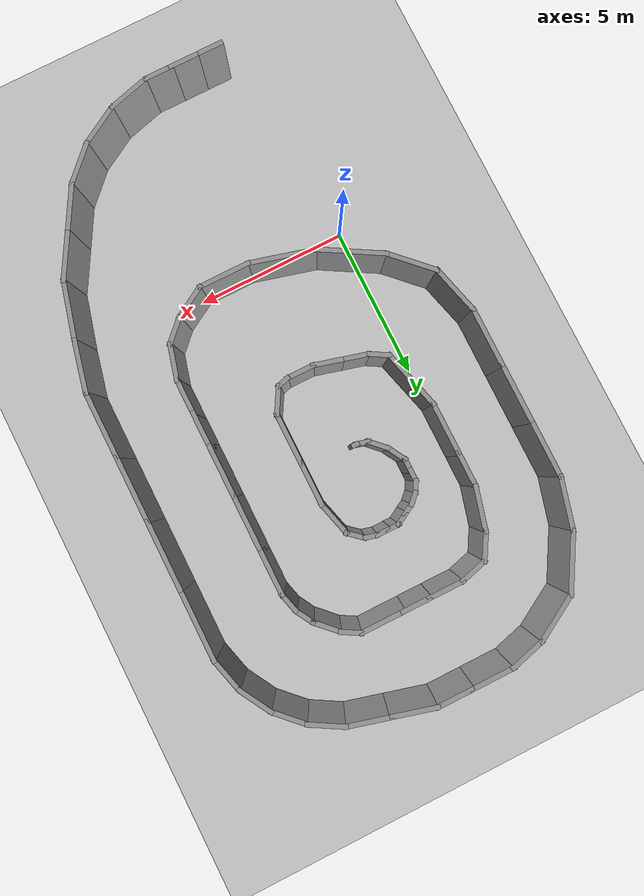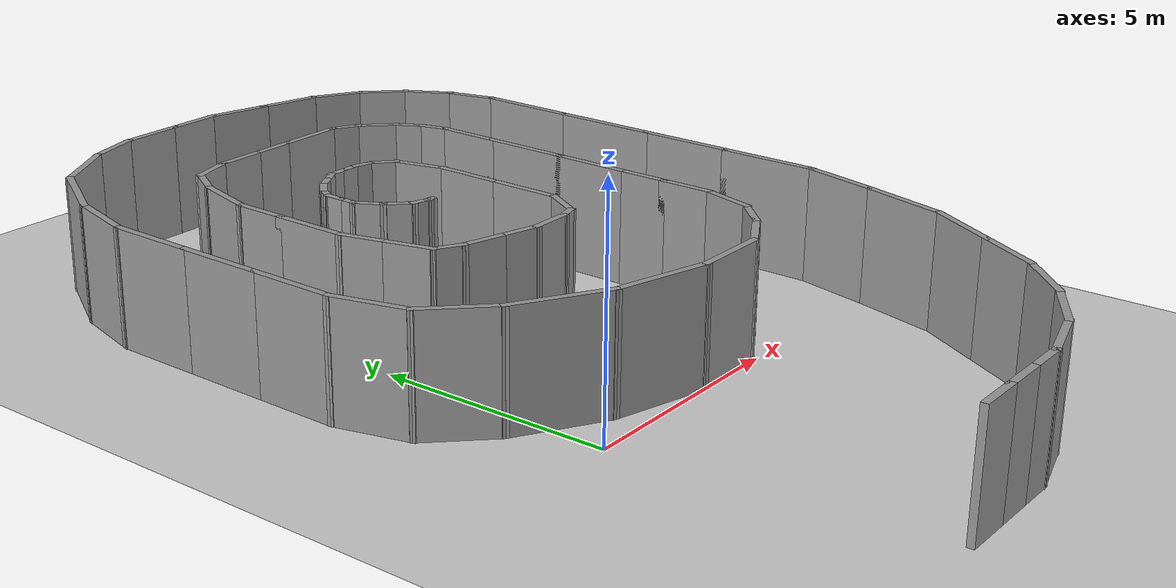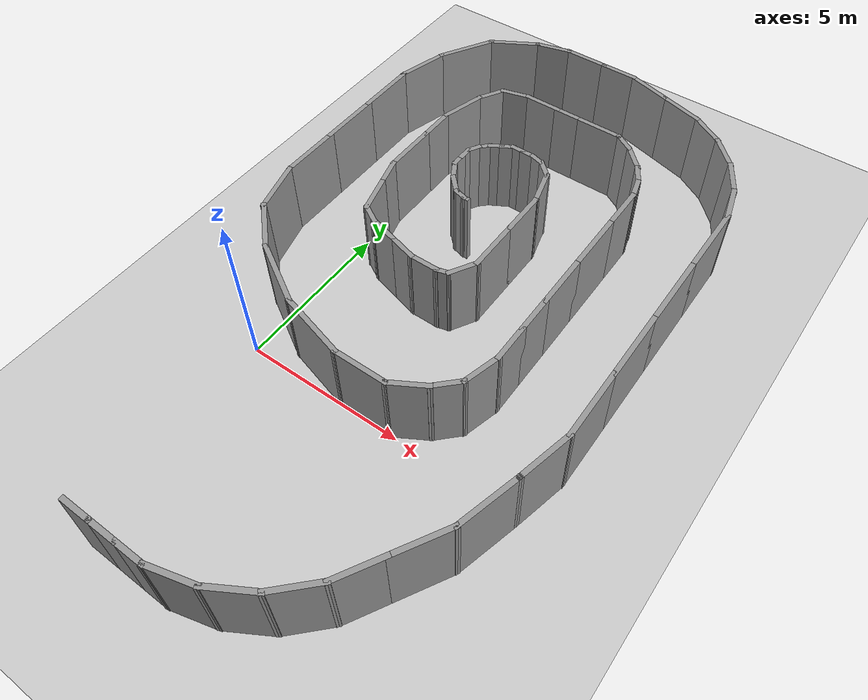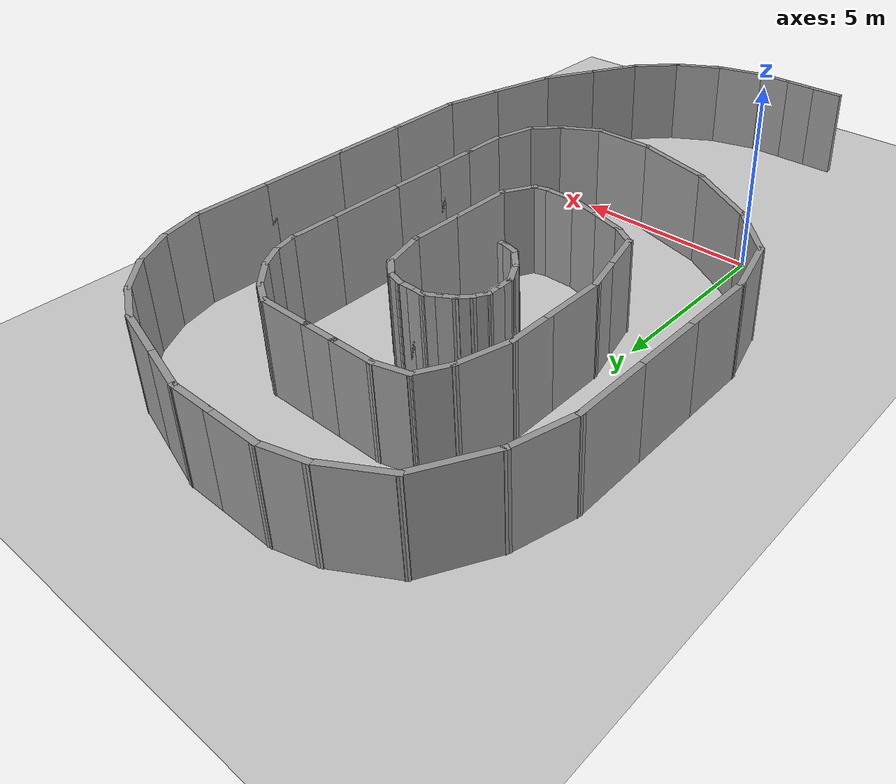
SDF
<sdf version="1.6">
 <world name="default">
  <light name="sun" type="directional">
   <pose>0 0 10 0 -0 0</pose>
   <diffuse>0.8 0.8 0.8 1</diffuse>
   <specular>0.2 0.2 0.2 1</specular>
   <attenuation>
    <range>1000</range>
    <constant>0.9</constant>
    <linear>0.01</linear>
    <quadratic>0.001</quadratic>
   </attenuation>
   <direction>-0.5 0.1 -0.9</direction>
  </light>
  <model name="ground_plane">
   <static>1</static>
   <link name="link">
    <collision name="collision">
     <geometry><plane><normal>0 0 1</normal><size>100 100</size></plane></geometry>
     <surface><friction><ode><mu>100</mu><mu2>50</mu2></ode></friction></surface>
    </collision>
    <visual name="visual">
     <cast_shadows>0</cast_shadows>
     <geometry><plane><normal>0 0 1</normal><size>100 100</size></plane></geometry>
     <material>
      <script><uri>file://media/materials/scripts/gazebo.material</uri><name>Gazebo/Grey</name></script>
     </material>
    </visual>
   </link>
  </model>
  <gravity>0 0 -9.8</gravity>
  <magnetic_field>6e-06 2.3e-05 -4.2e-05</magnetic_field>
  <atmosphere type="adiabatic"/>
  <physics name="default_physics" default="0" type="ode">
   <max_step_size>0.001</max_step_size>
   <real_time_factor>1</real_time_factor>
   <real_time_update_rate>1000</real_time_update_rate>
  </physics>
  <scene><ambient>0.4 0.4 0.4 1</ambient><background>0.7 0.7 0.7 1</background><shadows>1</shadows></scene>
  <audio><device>default</device></audio>
  <spherical_coordinates>
   <surface_model>EARTH_WGS84</surface_model>
   <latitude_deg>0</latitude_deg>
   <longitude_deg>0</longitude_deg>
   <elevation>0</elevation>
   <heading_deg>0</heading_deg>
  </spherical_coordinates>
  <model name="Snail">
   <pose>3.48593 3.80381 0 0 -0 1.56839</pose>
   <link name="Wall_10">
    <collision name="Wall_10_Collision">
     <geometry><box><size>1.5 0.15 2.5</size></box></geometry>
     <pose>0 0 1.25 0 -0 0</pose>
    </collision>
    <visual name="Wall_10_Visual">
     <pose>0 0 1.25 0 -0 0</pose>
     <geometry><box><size>1.5 0.15 2.5</size></box></geometry>
     <material>
      <script><uri>file://media/materials/scripts/gazebo.material</uri><name>Gazebo/Grey</name></script>
      <ambient>1 1 1 1</ambient>
     </material>
     <meta><layer>0</layer></meta>
    </visual>
    <pose>-9.6122 -1.83835 0 0 -0 -1.0472</pose>
   </link>
   <link name="Wall_11">
    <collision name="Wall_11_Collision">
     <geometry><box><size>1.5 0.15 2.5</size></box></geometry>
     <pose>0 0 1.25 0 -0 0</pose>
    </collision>
    <visual name="Wall_11_Visual">
     <pose>0 0 1.25 0 -0 0</pose>
     <geometry><box><size>1.5 0.15 2.5</size></box></geometry>
     <material>
      <script><uri>file://media/materials/scripts/gazebo.material</uri><name>Gazebo/Grey</name></script>
      <ambient>1 1 1 1</ambient>
     </material>
     <meta><layer>0</layer></meta>
    </visual>
    <pose>-8.79741 -2.90021 0 0 -0 -0.785398</pose>
   </link>
   <link name="Wall_12">
    <collision name="Wall_12_Collision">
     <geometry><box><size>1.5 0.15 2.5</size></box></geometry>
     <pose>0 0 1.25 0 -0 0</pose>
    </collision>
    <visual name="Wall_12_Visual">
     <pose>0 0 1.25 0 -0 0</pose>
     <geometry><box><size>1.5 0.15 2.5</size></box></geometry>
     <material>
      <script><uri>file://media/materials/scripts/gazebo.material</uri><name>Gazebo/Grey</name></script>
      <ambient>1 1 1 1</ambient>
     </material>
     <meta><layer>0</layer></meta>
    </visual>
    <pose>-7.73554 -3.71501 0 0 -0 -0.523599</pose>
   </link>
   <link name="Wall_13">
    <collision name="Wall_13_Collision">
     <geometry><box><size>1.75 0.15 2.5</size></box></geometry>
     <pose>0 0 1.25 0 -0 0</pose>
    </collision>
    <visual name="Wall_13_Visual">
     <pose>0 0 1.25 0 -0 0</pose>
     <geometry><box><size>1.75 0.15 2.5</size></box></geometry>
     <material>
      <script><uri>file://media/materials/scripts/gazebo.material</uri><name>Gazebo/Grey</name></script>
      <ambient>1 1 1 1</ambient>
     </material>
     <meta><layer>0</layer></meta>
    </visual>
    <pose>-6.45816 -4.45251 0 0 -0 -0.523599</pose>
   </link>
   <link name="Wall_14">
    <collision name="Wall_14_Collision">
     <geometry><box><size>2 0.15 2.5</size></box></geometry>
     <pose>0 0 1.25 0 -0 0</pose>
    </collision>
    <visual name="Wall_14_Visual">
     <pose>0 0 1.25 0 -0 0</pose>
     <geometry><box><size>2 0.15 2.5</size></box></geometry>
     <material>
      <script><uri>file://media/materials/scripts/gazebo.material</uri><name>Gazebo/Grey</name></script>
      <ambient>1 1 1 1</ambient>
     </material>
     <meta><layer>0</layer></meta>
    </visual>
    <pose>-4.87185 -5.09192 0 0 -0 -0.261799</pose>
   </link>
   <link name="Wall_15">
    <collision name="Wall_15_Collision">
     <geometry><box><size>1.77919 0.15 2.5</size></box></geometry>
     <pose>0 0 1.25 0 -0 0</pose>
    </collision>
    <visual name="Wall_15_Visual">
     <pose>0 0 1.25 0 -0 0</pose>
     <geometry><box><size>1.77919 0.15 2.5</size></box></geometry>
     <material>
      <script><uri>file://media/materials/scripts/gazebo.material</uri><name>Gazebo/Grey</name></script>
      <ambient>1 1 1 1</ambient>
     </material>
     <meta><layer>0</layer></meta>
    </visual>
    <pose>-3.18552 -5.51827 0 0 -0 -0.231554</pose>
   </link>
   <link name="Wall_18">
    <collision name="Wall_18_Collision">
     <geometry><box><size>2.25 0.15 2.5</size></box></geometry>
     <pose>0 0 1.25 0 -0 0</pose>
    </collision>
    <visual name="Wall_18_Visual">
     <pose>0 0 1.25 0 -0 0</pose>
     <geometry><box><size>2.25 0.15 2.5</size></box></geometry>
     <material>
      <script><uri>file://media/materials/scripts/gazebo.material</uri><name>Gazebo/Grey</name></script>
      <ambient>1 1 1 1</ambient>
     </material>
     <meta><layer>0</layer></meta>
    </visual>
    <pose>-1.34266 -5.70521 0 0 -0 0</pose>
   </link>
   <link name="Wall_19">
    <collision name="Wall_19_Collision">
     <geometry><box><size>2.25 0.15 2.5</size></box></geometry>
     <pose>0 0 1.25 0 -0 0</pose>
    </collision>
    <visual name="Wall_19_Visual">
     <pose>0 0 1.25 0 -0 0</pose>
     <geometry><box><size>2.25 0.15 2.5</size></box></geometry>
     <material>
      <script><uri>file://media/materials/scripts/gazebo.material</uri><name>Gazebo/Grey</name></script>
      <ambient>1 1 1 1</ambient>
     </material>
     <meta><layer>0</layer></meta>
    </visual>
    <pose>0.757335 -5.70521 0 0 -0 0</pose>
   </link>
   <link name="Wall_20">
    <collision name="Wall_20_Collision">
     <geometry><box><size>2.5 0.15 2.5</size></box></geometry>
     <pose>0 0 1.25 0 -0 0</pose>
    </collision>
    <visual name="Wall_20_Visual">
     <pose>0 0 1.25 0 -0 0</pose>
     <geometry><box><size>2.5 0.15 2.5</size></box></geometry>
     <material>
      <script><uri>file://media/materials/scripts/gazebo.material</uri><name>Gazebo/Grey</name></script>
      <ambient>1 1 1 1</ambient>
     </material>
     <meta><layer>0</layer></meta>
    </visual>
    <pose>2.98234 -5.70521 0 0 -0 0</pose>
   </link>
   <link name="Wall_21">
    <collision name="Wall_21_Collision">
     <geometry><box><size>2.25 0.15 2.5</size></box></geometry>
     <pose>0 0 1.25 0 -0 0</pose>
    </collision>
    <visual name="Wall_21_Visual">
     <pose>0 0 1.25 0 -0 0</pose>
     <geometry><box><size>2.25 0.15 2.5</size></box></geometry>
     <material>
      <script><uri>file://media/materials/scripts/gazebo.material</uri><name>Gazebo/Grey</name></script>
      <ambient>1 1 1 1</ambient>
     </material>
     <meta><layer>0</layer></meta>
    </visual>
    <pose>5.20733 -5.70521 0 0 -0 0</pose>
   </link>
   <link name="Wall_22">
    <collision name="Wall_22_Collision">
     <geometry><box><size>1.25 0.15 2.5</size></box></geometry>
     <pose>0 0 1.25 0 -0 0</pose>
    </collision>
    <visual name="Wall_22_Visual">
     <pose>0 0 1.25 0 -0 0</pose>
     <geometry><box><size>1.25 0.15 2.5</size></box></geometry>
     <material>
      <script><uri>file://media/materials/scripts/gazebo.material</uri><name>Gazebo/Grey</name></script>
      <ambient>1 1 1 1</ambient>
     </material>
     <meta><layer>0</layer></meta>
    </visual>
    <pose>6.78859 -5.56286 0 0 -0 0.261799</pose>
   </link>
   <link name="Wall_23">
    <collision name="Wall_23_Collision">
     <geometry><box><size>1.25 0.15 2.5</size></box></geometry>
     <pose>0 0 1.25 0 -0 0</pose>
    </collision>
    <visual name="Wall_23_Visual">
     <pose>0 0 1.25 0 -0 0</pose>
     <geometry><box><size>1.25 0.15 2.5</size></box></geometry>
     <material>
      <script><uri>file://media/materials/scripts/gazebo.material</uri><name>Gazebo/Grey</name></script>
      <ambient>1 1 1 1</ambient>
     </material>
     <meta><layer>0</layer></meta>
    </visual>
    <pose>7.79617 -5.14551 0 0 -0 0.523599</pose>
   </link>
   <link name="Wall_24">
    <collision name="Wall_24_Collision">
     <geometry><box><size>1.25 0.15 2.5</size></box></geometry>
     <pose>0 0 1.25 0 -0 0</pose>
    </collision>
    <visual name="Wall_24_Visual">
     <pose>0 0 1.25 0 -0 0</pose>
     <geometry><box><size>1.25 0.15 2.5</size></box></geometry>
     <material>
      <script><uri>file://media/materials/scripts/gazebo.material</uri><name>Gazebo/Grey</name></script>
      <ambient>1 1 1 1</ambient>
     </material>
     <meta><layer>0</layer></meta>
    </visual>
    <pose>8.66139 -4.4816 0 0 -0 0.785398</pose>
   </link>
   <link name="Wall_25">
    <collision name="Wall_25_Collision">
     <geometry><box><size>1.25 0.15 2.5</size></box></geometry>
     <pose>0 0 1.25 0 -0 0</pose>
    </collision>
    <visual name="Wall_25_Visual">
     <pose>0 0 1.25 0 -0 0</pose>
     <geometry><box><size>1.25 0.15 2.5</size></box></geometry>
     <material>
      <script><uri>file://media/materials/scripts/gazebo.material</uri><name>Gazebo/Grey</name></script>
      <ambient>1 1 1 1</ambient>
     </material>
     <meta><layer>0</layer></meta>
    </visual>
    <pose>9.3253 -3.61638 0 0 -0 1.0472</pose>
   </link>
   <link name="Wall_26">
    <collision name="Wall_26_Collision">
     <geometry><box><size>1.5 0.15 2.5</size></box></geometry>
     <pose>0 0 1.25 0 -0 0</pose>
    </collision>
    <visual name="Wall_26_Visual">
     <pose>0 0 1.25 0 -0 0</pose>
     <geometry><box><size>1.5 0.15 2.5</size></box></geometry>
     <material>
      <script><uri>file://media/materials/scripts/gazebo.material</uri><name>Gazebo/Grey</name></script>
      <ambient>1 1 1 1</ambient>
     </material>
     <meta><layer>0</layer></meta>
    </visual>
    <pose>9.775 -2.48806 0 0 -0 1.309</pose>
   </link>
   <link name="Wall_27">
    <collision name="Wall_27_Collision">
     <geometry><box><size>1.5 0.15 2.5</size></box></geometry>
     <pose>0 0 1.25 0 -0 0</pose>
    </collision>
    <visual name="Wall_27_Visual">
     <pose>0 0 1.25 0 -0 0</pose>
     <geometry><box><size>1.5 0.15 2.5</size></box></geometry>
     <material>
      <script><uri>file://media/materials/scripts/gazebo.material</uri><name>Gazebo/Grey</name></script>
      <ambient>1 1 1 1</ambient>
     </material>
     <meta><layer>0</layer></meta>
    </visual>
    <pose>10.1244 -1.18406 0 0 -0 1.309</pose>
   </link>
   <link name="Wall_28">
    <collision name="Wall_28_Collision">
     <geometry><box><size>1.25 0.15 2.5</size></box></geometry>
     <pose>0 0 1.25 0 -0 0</pose>
    </collision>
    <visual name="Wall_28_Visual">
     <pose>0 0 1.25 0 -0 0</pose>
     <geometry><box><size>1.25 0.15 2.5</size></box></geometry>
     <material>
      <script><uri>file://media/materials/scripts/gazebo.material</uri><name>Gazebo/Grey</name></script>
      <ambient>1 1 1 1</ambient>
     </material>
     <meta><layer>0</layer></meta>
    </visual>
    <pose>10.2991 0.017938 0 0 -0 1.5708</pose>
   </link>
   <link name="Wall_29">
    <collision name="Wall_29_Collision">
     <geometry><box><size>1.5 0.15 2.5</size></box></geometry>
     <pose>0 0 1.25 0 -0 0</pose>
    </collision>
    <visual name="Wall_29_Visual">
     <pose>0 0 1.25 0 -0 0</pose>
     <geometry><box><size>1.5 0.15 2.5</size></box></geometry>
     <material>
      <script><uri>file://media/materials/scripts/gazebo.material</uri><name>Gazebo/Grey</name></script>
      <ambient>1 1 1 1</ambient>
     </material>
     <meta><layer>0</layer></meta>
    </visual>
    <pose>10.2991 1.24294 0 0 -0 1.5708</pose>
   </link>
   <link name="Wall_30">
    <collision name="Wall_30_Collision">
     <geometry><box><size>1.25 0.15 2.5</size></box></geometry>
     <pose>0 0 1.25 0 -0 0</pose>
    </collision>
    <visual name="Wall_30_Visual">
     <pose>0 0 1.25 0 -0 0</pose>
     <geometry><box><size>1.25 0.15 2.5</size></box></geometry>
     <material>
      <script><uri>file://media/materials/scripts/gazebo.material</uri><name>Gazebo/Grey</name></script>
      <ambient>1 1 1 1</ambient>
     </material>
     <meta><layer>0</layer></meta>
    </visual>
    <pose>10.1568 2.4492 0 0 -0 1.8326</pose>
   </link>
   <link name="Wall_31">
    <collision name="Wall_31_Collision">
     <geometry><box><size>1.75 0.15 2.5</size></box></geometry>
     <pose>0 0 1.25 0 -0 0</pose>
    </collision>
    <visual name="Wall_31_Visual">
     <pose>0 0 1.25 0 -0 0</pose>
     <geometry><box><size>1.75 0.15 2.5</size></box></geometry>
     <material>
      <script><uri>file://media/materials/scripts/gazebo.material</uri><name>Gazebo/Grey</name></script>
      <ambient>1 1 1 1</ambient>
     </material>
     <meta><layer>0</layer></meta>
    </visual>
    <pose>9.61441 3.67328 0 0 -0 2.0944</pose>
   </link>
   <link name="Wall_32">
    <collision name="Wall_32_Collision">
     <geometry><box><size>2 0.15 2.5</size></box></geometry>
     <pose>0 0 1.25 0 -0 0</pose>
    </collision>
    <visual name="Wall_32_Visual">
     <pose>0 0 1.25 0 -0 0</pose>
     <geometry><box><size>2 0.15 2.5</size></box></geometry>
     <material>
      <script><uri>file://media/materials/scripts/gazebo.material</uri><name>Gazebo/Grey</name></script>
      <ambient>1 1 1 1</ambient>
     </material>
     <meta><layer>0</layer></meta>
    </visual>
    <pose>8.41334 4.8286 0 0 -0 2.61799</pose>
   </link>
   <link name="Wall_33">
    <collision name="Wall_33_Collision">
     <geometry><box><size>1.75 0.15 2.5</size></box></geometry>
     <pose>0 0 1.25 0 -0 0</pose>
    </collision>
    <visual name="Wall_33_Visual">
     <pose>0 0 1.25 0 -0 0</pose>
     <geometry><box><size>1.75 0.15 2.5</size></box></geometry>
     <material>
      <script><uri>file://media/materials/scripts/gazebo.material</uri><name>Gazebo/Grey</name></script>
      <ambient>1 1 1 1</ambient>
     </material>
     <meta><layer>0</layer></meta>
    </visual>
    <pose>6.83952 5.49815 0 0 -0 2.87979</pose>
   </link>
   <link name="Wall_34">
    <collision name="Wall_34_Collision">
     <geometry><box><size>2 0.15 2.5</size></box></geometry>
     <pose>0 0 1.25 0 -0 0</pose>
    </collision>
    <visual name="Wall_34_Visual">
     <pose>0 0 1.25 0 -0 0</pose>
     <geometry><box><size>2 0.15 2.5</size></box></geometry>
     <material>
      <script><uri>file://media/materials/scripts/gazebo.material</uri><name>Gazebo/Grey</name></script>
      <ambient>1 1 1 1</ambient>
     </material>
     <meta><layer>0</layer></meta>
    </visual>
    <pose>5.14178 5.70521 0 0 -0 3.14159</pose>
   </link>
   <link name="Wall_35">
    <collision name="Wall_35_Collision">
     <geometry><box><size>2 0.15 2.5</size></box></geometry>
     <pose>0 0 1.25 0 -0 0</pose>
    </collision>
    <visual name="Wall_35_Visual">
     <pose>0 0 1.25 0 -0 0</pose>
     <geometry><box><size>2 0.15 2.5</size></box></geometry>
     <material>
      <script><uri>file://media/materials/scripts/gazebo.material</uri><name>Gazebo/Grey</name></script>
      <ambient>1 1 1 1</ambient>
     </material>
     <meta><layer>0</layer></meta>
    </visual>
    <pose>3.29178 5.70521 0 0 -0 3.14159</pose>
   </link>
   <link name="Wall_36">
    <collision name="Wall_36_Collision">
     <geometry><box><size>2 0.15 2.5</size></box></geometry>
     <pose>0 0 1.25 0 -0 0</pose>
    </collision>
    <visual name="Wall_36_Visual">
     <pose>0 0 1.25 0 -0 0</pose>
     <geometry><box><size>2 0.15 2.5</size></box></geometry>
     <material>
      <script><uri>file://media/materials/scripts/gazebo.material</uri><name>Gazebo/Grey</name></script>
      <ambient>1 1 1 1</ambient>
     </material>
     <meta><layer>0</layer></meta>
    </visual>
    <pose>1.44178 5.70521 0 0 -0 3.14159</pose>
   </link>
   <link name="Wall_37">
    <collision name="Wall_37_Collision">
     <geometry><box><size>1.75 0.15 2.5</size></box></geometry>
     <pose>0 0 1.25 0 -0 0</pose>
    </collision>
    <visual name="Wall_37_Visual">
     <pose>0 0 1.25 0 -0 0</pose>
     <geometry><box><size>1.75 0.15 2.5</size></box></geometry>
     <material>
      <script><uri>file://media/materials/scripts/gazebo.material</uri><name>Gazebo/Grey</name></script>
      <ambient>1 1 1 1</ambient>
     </material>
     <meta><layer>0</layer></meta>
    </visual>
    <pose>-0.255959 5.49815 0 0 -0 -2.87979</pose>
   </link>
   <link name="Wall_38">
    <collision name="Wall_38_Collision">
     <geometry><box><size>1.75 0.15 2.5</size></box></geometry>
     <pose>0 0 1.25 0 -0 0</pose>
    </collision>
    <visual name="Wall_38_Visual">
     <pose>0 0 1.25 0 -0 0</pose>
     <geometry><box><size>1.75 0.15 2.5</size></box></geometry>
     <material>
      <script><uri>file://media/materials/scripts/gazebo.material</uri><name>Gazebo/Grey</name></script>
      <ambient>1 1 1 1</ambient>
     </material>
     <meta><layer>0</layer></meta>
    </visual>
    <pose>-1.59438 4.72541 0 0 -0 -2.35619</pose>
   </link>
   <link name="Wall_39">
    <collision name="Wall_39_Collision">
     <geometry><box><size>2.25 0.15 2.5</size></box></geometry>
     <pose>0 0 1.25 0 -0 0</pose>
    </collision>
    <visual name="Wall_39_Visual">
     <pose>0 0 1.25 0 -0 0</pose>
     <geometry><box><size>2.25 0.15 2.5</size></box></geometry>
     <material>
      <script><uri>file://media/materials/scripts/gazebo.material</uri><name>Gazebo/Grey</name></script>
      <ambient>1 1 1 1</ambient>
     </material>
     <meta><layer>0</layer></meta>
    </visual>
    <pose>-2.68507 3.2504 0 0 -0 -2.0944</pose>
   </link>
   <link name="Wall_40">
    <collision name="Wall_40_Collision">
     <geometry><box><size>2.25 0.15 2.5</size></box></geometry>
     <pose>0 0 1.25 0 -0 0</pose>
    </collision>
    <visual name="Wall_40_Visual">
     <pose>0 0 1.25 0 -0 0</pose>
     <geometry><box><size>2.25 0.15 2.5</size></box></geometry>
     <material>
      <script><uri>file://media/materials/scripts/gazebo.material</uri><name>Gazebo/Grey</name></script>
      <ambient>1 1 1 1</ambient>
     </material>
     <meta><layer>0</layer></meta>
    </visual>
    <pose>-3.48183 1.32685 0 0 -0 -1.8326</pose>
   </link>
   <link name="Wall_41">
    <collision name="Wall_41_Collision">
     <geometry><box><size>1.75 0.15 2.5</size></box></geometry>
     <pose>0 0 1.25 0 -0 0</pose>
    </collision>
    <visual name="Wall_41_Visual">
     <pose>0 0 1.25 0 -0 0</pose>
     <geometry><box><size>1.75 0.15 2.5</size></box></geometry>
     <material>
      <script><uri>file://media/materials/scripts/gazebo.material</uri><name>Gazebo/Grey</name></script>
      <ambient>1 1 1 1</ambient>
     </material>
     <meta><layer>0</layer></meta>
    </visual>
    <pose>-3.75359 -0.487371 0 0 -0 -1.5708</pose>
   </link>
   <link name="Wall_42">
    <collision name="Wall_42_Collision">
     <geometry><box><size>1.25 0.15 2.5</size></box></geometry>
     <pose>0 0 1.25 0 -0 0</pose>
    </collision>
    <visual name="Wall_42_Visual">
     <pose>0 0 1.25 0 -0 0</pose>
     <geometry><box><size>1.25 0.15 2.5</size></box></geometry>
     <material>
      <script><uri>file://media/materials/scripts/gazebo.material</uri><name>Gazebo/Grey</name></script>
      <ambient>1 1 1 1</ambient>
     </material>
     <meta><layer>0</layer></meta>
    </visual>
    <pose>-3.47859 -1.76368 0 0 -0 -1.0472</pose>
   </link>
   <link name="Wall_43">
    <collision name="Wall_43_Collision">
     <geometry><box><size>1 0.15 2.5</size></box></geometry>
     <pose>0 0 1.25 0 -0 0</pose>
    </collision>
    <visual name="Wall_43_Visual">
     <pose>0 0 1.25 0 -0 0</pose>
     <geometry><box><size>1 0.15 2.5</size></box></geometry>
     <material>
      <script><uri>file://media/materials/scripts/gazebo.material</uri><name>Gazebo/Grey</name></script>
      <ambient>1 1 1 1</ambient>
     </material>
     <meta><layer>0</layer></meta>
    </visual>
    <pose>-2.90307 -2.54052 0 0 -0 -0.785398</pose>
   </link>
   <link name="Wall_44">
    <collision name="Wall_44_Collision">
     <geometry><box><size>1.25 0.15 2.5</size></box></geometry>
     <pose>0 0 1.25 0 -0 0</pose>
    </collision>
    <visual name="Wall_44_Visual">
     <pose>0 0 1.25 0 -0 0</pose>
     <geometry><box><size>1.25 0.15 2.5</size></box></geometry>
     <material>
      <script><uri>file://media/materials/scripts/gazebo.material</uri><name>Gazebo/Grey</name></script>
      <ambient>1 1 1 1</ambient>
     </material>
     <meta><layer>0</layer></meta>
    </visual>
    <pose>-2.07129 -2.98339 0 0 -0 -0.261799</pose>
   </link>
   <link name="Wall_45">
    <collision name="Wall_45_Collision">
     <geometry><box><size>1.25 0.15 2.5</size></box></geometry>
     <pose>0 0 1.25 0 -0 0</pose>
    </collision>
    <visual name="Wall_45_Visual">
     <pose>0 0 1.25 0 -0 0</pose>
     <geometry><box><size>1.25 0.15 2.5</size></box></geometry>
     <material>
      <script><uri>file://media/materials/scripts/gazebo.material</uri><name>Gazebo/Grey</name></script>
      <ambient>1 1 1 1</ambient>
     </material>
     <meta><layer>0</layer></meta>
    </visual>
    <pose>-0.990032 -3.12574 0 0 -0 0</pose>
   </link>
   <link name="Wall_46">
    <collision name="Wall_46_Collision">
     <geometry><box><size>1.25 0.15 2.5</size></box></geometry>
     <pose>0 0 1.25 0 -0 0</pose>
    </collision>
    <visual name="Wall_46_Visual">
     <pose>0 0 1.25 0 -0 0</pose>
     <geometry><box><size>1.25 0.15 2.5</size></box></geometry>
     <material>
      <script><uri>file://media/materials/scripts/gazebo.material</uri><name>Gazebo/Grey</name></script>
      <ambient>1 1 1 1</ambient>
     </material>
     <meta><layer>0</layer></meta>
    </visual>
    <pose>0.109968 -3.12574 0 0 -0 0</pose>
   </link>
   <link name="Wall_47">
    <collision name="Wall_47_Collision">
     <geometry><box><size>1.75 0.15 2.5</size></box></geometry>
     <pose>0 0 1.25 0 -0 0</pose>
    </collision>
    <visual name="Wall_47_Visual">
     <pose>0 0 1.25 0 -0 0</pose>
     <geometry><box><size>1.75 0.15 2.5</size></box></geometry>
     <material>
      <script><uri>file://media/materials/scripts/gazebo.material</uri><name>Gazebo/Grey</name></script>
      <ambient>1 1 1 1</ambient>
     </material>
     <meta><layer>0</layer></meta>
    </visual>
    <pose>1.45997 -3.12574 0 0 -0 0</pose>
   </link>
   <link name="Wall_48">
    <collision name="Wall_48_Collision">
     <geometry><box><size>2 0.15 2.5</size></box></geometry>
     <pose>0 0 1.25 0 -0 0</pose>
    </collision>
    <visual name="Wall_48_Visual">
     <pose>0 0 1.25 0 -0 0</pose>
     <geometry><box><size>2 0.15 2.5</size></box></geometry>
     <material>
      <script><uri>file://media/materials/scripts/gazebo.material</uri><name>Gazebo/Grey</name></script>
      <ambient>1 1 1 1</ambient>
     </material>
     <meta><layer>0</layer></meta>
    </visual>
    <pose>3.18497 -3.12574 0 0 -0 0</pose>
   </link>
   <link name="Wall_49">
    <collision name="Wall_49_Collision">
     <geometry><box><size>1.5 0.15 2.5</size></box></geometry>
     <pose>0 0 1.25 0 -0 0</pose>
    </collision>
    <visual name="Wall_49_Visual">
     <pose>0 0 1.25 0 -0 0</pose>
     <geometry><box><size>1.5 0.15 2.5</size></box></geometry>
     <material>
      <script><uri>file://media/materials/scripts/gazebo.material</uri><name>Gazebo/Grey</name></script>
      <ambient>1 1 1 1</ambient>
     </material>
     <meta><layer>0</layer></meta>
    </visual>
    <pose>4.78497 -3.12574 0 0 -0 0</pose>
   </link>
   <link name="Wall_50">
    <collision name="Wall_50_Collision">
     <geometry><box><size>0.75 0.15 2.5</size></box></geometry>
     <pose>0 0 1.25 0 -0 0</pose>
    </collision>
    <visual name="Wall_50_Visual">
     <pose>0 0 1.25 0 -0 0</pose>
     <geometry><box><size>0.75 0.15 2.5</size></box></geometry>
     <material>
      <script><uri>file://media/materials/scripts/gazebo.material</uri><name>Gazebo/Grey</name></script>
      <ambient>1 1 1 1</ambient>
     </material>
     <meta><layer>0</layer></meta>
    </visual>
    <pose>5.74975 -3.04809 0 0 -0 0.261799</pose>
   </link>
   <link name="Wall_51">
    <collision name="Wall_51_Collision">
     <geometry><box><size>0.75 0.15 2.5</size></box></geometry>
     <pose>0 0 1.25 0 -0 0</pose>
    </collision>
    <visual name="Wall_51_Visual">
     <pose>0 0 1.25 0 -0 0</pose>
     <geometry><box><size>0.75 0.15 2.5</size></box></geometry>
     <material>
      <script><uri>file://media/materials/scripts/gazebo.material</uri><name>Gazebo/Grey</name></script>
      <ambient>1 1 1 1</ambient>
     </material>
     <meta><layer>0</layer></meta>
    </visual>
    <pose>6.29933 -2.82045 0 0 -0 0.523599</pose>
   </link>
   <link name="Wall_52">
    <collision name="Wall_52_Collision">
     <geometry><box><size>1 0.15 2.5</size></box></geometry>
     <pose>0 0 1.25 0 -0 0</pose>
    </collision>
    <visual name="Wall_52_Visual">
     <pose>0 0 1.25 0 -0 0</pose>
     <geometry><box><size>1 0.15 2.5</size></box></geometry>
     <material>
      <script><uri>file://media/materials/scripts/gazebo.material</uri><name>Gazebo/Grey</name></script>
      <ambient>1 1 1 1</ambient>
     </material>
     <meta><layer>0</layer></meta>
    </visual>
    <pose>6.85966 -2.36993 0 0 -0 0.785398</pose>
   </link>
   <link name="Wall_53">
    <collision name="Wall_53_Collision">
     <geometry><box><size>0.75 0.15 2.5</size></box></geometry>
     <pose>0 0 1.25 0 -0 0</pose>
    </collision>
    <visual name="Wall_53_Visual">
     <pose>0 0 1.25 0 -0 0</pose>
     <geometry><box><size>0.75 0.15 2.5</size></box></geometry>
     <material>
      <script><uri>file://media/materials/scripts/gazebo.material</uri><name>Gazebo/Grey</name></script>
      <ambient>1 1 1 1</ambient>
     </material>
     <meta><layer>0</layer></meta>
    </visual>
    <pose>7.31018 -1.8096 0 0 -0 1.0472</pose>
   </link>
   <link name="Wall_54">
    <collision name="Wall_54_Collision">
     <geometry><box><size>1.5 0.15 2.5</size></box></geometry>
     <pose>0 0 1.25 0 -0 0</pose>
    </collision>
    <visual name="Wall_54_Visual">
     <pose>0 0 1.25 0 -0 0</pose>
     <geometry><box><size>1.5 0.15 2.5</size></box></geometry>
     <material>
      <script><uri>file://media/materials/scripts/gazebo.material</uri><name>Gazebo/Grey</name></script>
      <ambient>1 1 1 1</ambient>
     </material>
     <meta><layer>0</layer></meta>
    </visual>
    <pose>7.46018 -0.874793 0 0 -0 1.5708</pose>
   </link>
   <link name="Wall_55">
    <collision name="Wall_55_Collision">
     <geometry><box><size>1 0.15 2.5</size></box></geometry>
     <pose>0 0 1.25 0 -0 0</pose>
    </collision>
    <visual name="Wall_55_Visual">
     <pose>0 0 1.25 0 -0 0</pose>
     <geometry><box><size>1 0.15 2.5</size></box></geometry>
     <material>
      <script><uri>file://media/materials/scripts/gazebo.material</uri><name>Gazebo/Grey</name></script>
      <ambient>1 1 1 1</ambient>
     </material>
     <meta><layer>0</layer></meta>
    </visual>
    <pose>7.46018 0.225207 0 0 -0 1.5708</pose>
   </link>
   <link name="Wall_56">
    <collision name="Wall_56_Collision">
     <geometry><box><size>1.25 0.15 2.5</size></box></geometry>
     <pose>0 0 1.25 0 -0 0</pose>
    </collision>
    <visual name="Wall_56_Visual">
     <pose>0 0 1.25 0 -0 0</pose>
     <geometry><box><size>1.25 0.15 2.5</size></box></geometry>
     <material>
      <script><uri>file://media/materials/scripts/gazebo.material</uri><name>Gazebo/Grey</name></script>
      <ambient>1 1 1 1</ambient>
     </material>
     <meta><layer>0</layer></meta>
    </visual>
    <pose>7.46018 1.20021 0 0 -0 1.5708</pose>
   </link>
   <link name="Wall_57">
    <collision name="Wall_57_Collision">
     <geometry><box><size>1 0.15 2.5</size></box></geometry>
     <pose>0 0 1.25 0 -0 0</pose>
    </collision>
    <visual name="Wall_57_Visual">
     <pose>0 0 1.25 0 -0 0</pose>
     <geometry><box><size>1 0.15 2.5</size></box></geometry>
     <material>
      <script><uri>file://media/materials/scripts/gazebo.material</uri><name>Gazebo/Grey</name></script>
      <ambient>1 1 1 1</ambient>
     </material>
     <meta><layer>0</layer></meta>
    </visual>
    <pose>7.35018 2.16072 0 0 -0 1.8326</pose>
   </link>
   <link name="Wall_58">
    <collision name="Wall_58_Collision">
     <geometry><box><size>1 0.15 2.5</size></box></geometry>
     <pose>0 0 1.25 0 -0 0</pose>
    </collision>
    <visual name="Wall_58_Visual">
     <pose>0 0 1.25 0 -0 0</pose>
     <geometry><box><size>1 0.15 2.5</size></box></geometry>
     <material>
      <script><uri>file://media/materials/scripts/gazebo.material</uri><name>Gazebo/Grey</name></script>
      <ambient>1 1 1 1</ambient>
     </material>
     <meta><layer>0</layer></meta>
    </visual>
    <pose>6.87212 2.78374 0 0 -0 2.61799</pose>
   </link>
   <link name="Wall_59">
    <collision name="Wall_59_Collision">
     <geometry><box><size>1.5 0.15 2.5</size></box></geometry>
     <pose>0 0 1.25 0 -0 0</pose>
    </collision>
    <visual name="Wall_59_Visual">
     <pose>0 0 1.25 0 -0 0</pose>
     <geometry><box><size>1.5 0.15 2.5</size></box></geometry>
     <material>
      <script><uri>file://media/materials/scripts/gazebo.material</uri><name>Gazebo/Grey</name></script>
      <ambient>1 1 1 1</ambient>
     </material>
     <meta><layer>0</layer></meta>
    </visual>
    <pose>5.85206 3.17095 0 0 -0 2.87979</pose>
   </link>
   <link name="Wall_6">
    <collision name="Wall_6_Collision">
     <geometry><box><size>1 0.15 2.5</size></box></geometry>
     <pose>0 0 1.25 0 -0 0</pose>
    </collision>
    <visual name="Wall_6_Visual">
     <pose>0 0 1.25 0 -0 0</pose>
     <geometry><box><size>1 0.15 2.5</size></box></geometry>
     <material>
      <script><uri>file://media/materials/scripts/gazebo.material</uri><name>Gazebo/Grey</name></script>
      <ambient>1 1 1 1</ambient>
     </material>
     <meta><layer>0</layer></meta>
    </visual>
    <pose>-10.2991 2.17522 0 0 -0 -1.5708</pose>
   </link>
   <link name="Wall_60">
    <collision name="Wall_60_Collision">
     <geometry><box><size>1.25 0.15 2.5</size></box></geometry>
     <pose>0 0 1.25 0 -0 0</pose>
    </collision>
    <visual name="Wall_60_Visual">
     <pose>0 0 1.25 0 -0 0</pose>
     <geometry><box><size>1.25 0.15 2.5</size></box></geometry>
     <material>
      <script><uri>file://media/materials/scripts/gazebo.material</uri><name>Gazebo/Grey</name></script>
      <ambient>1 1 1 1</ambient>
     </material>
     <meta><layer>0</layer></meta>
    </visual>
    <pose>4.65006 3.34565 0 0 -0 3.14159</pose>
   </link>
   <link name="Wall_61">
    <collision name="Wall_61_Collision">
     <geometry><box><size>1.75 0.15 2.5</size></box></geometry>
     <pose>0 0 1.25 0 -0 0</pose>
    </collision>
    <visual name="Wall_61_Visual">
     <pose>0 0 1.25 0 -0 0</pose>
     <geometry><box><size>1.75 0.15 2.5</size></box></geometry>
     <material>
      <script><uri>file://media/materials/scripts/gazebo.material</uri><name>Gazebo/Grey</name></script>
      <ambient>1 1 1 1</ambient>
     </material>
     <meta><layer>0</layer></meta>
    </visual>
    <pose>3.30006 3.34565 0 0 -0 3.14159</pose>
   </link>
   <link name="Wall_62">
    <collision name="Wall_62_Collision">
     <geometry><box><size>1 0.15 2.5</size></box></geometry>
     <pose>0 0 1.25 0 -0 0</pose>
    </collision>
    <visual name="Wall_62_Visual">
     <pose>0 0 1.25 0 -0 0</pose>
     <geometry><box><size>1 0.15 2.5</size></box></geometry>
     <material>
      <script><uri>file://media/materials/scripts/gazebo.material</uri><name>Gazebo/Grey</name></script>
      <ambient>1 1 1 1</ambient>
     </material>
     <meta><layer>0</layer></meta>
    </visual>
    <pose>2.08954 3.23565 0 0 -0 -2.87979</pose>
   </link>
   <link name="Wall_63">
    <collision name="Wall_63_Collision">
     <geometry><box><size>1.25 0.15 2.5</size></box></geometry>
     <pose>0 0 1.25 0 -0 0</pose>
    </collision>
    <visual name="Wall_63_Visual">
     <pose>0 0 1.25 0 -0 0</pose>
     <geometry><box><size>1.25 0.15 2.5</size></box></geometry>
     <material>
      <script><uri>file://media/materials/scripts/gazebo.material</uri><name>Gazebo/Grey</name></script>
      <ambient>1 1 1 1</ambient>
     </material>
     <meta><layer>0</layer></meta>
    </visual>
    <pose>1.14777 2.9833 0 0 -0 -2.87979</pose>
   </link>
   <link name="Wall_64">
    <collision name="Wall_64_Collision">
     <geometry><box><size>0.75 0.15 2.5</size></box></geometry>
     <pose>0 0 1.25 0 -0 0</pose>
    </collision>
    <visual name="Wall_64_Visual">
     <pose>0 0 1.25 0 -0 0</pose>
     <geometry><box><size>0.75 0.15 2.5</size></box></geometry>
     <material>
      <script><uri>file://media/materials/scripts/gazebo.material</uri><name>Gazebo/Grey</name></script>
      <ambient>1 1 1 1</ambient>
     </material>
     <meta><layer>0</layer></meta>
    </visual>
    <pose>0.466507 2.58114 0 0 -0 -2.0944</pose>
   </link>
   <link name="Wall_65">
    <collision name="Wall_65_Collision">
     <geometry><box><size>1 0.15 2.5</size></box></geometry>
     <pose>0 0 1.25 0 -0 0</pose>
    </collision>
    <visual name="Wall_65_Visual">
     <pose>0 0 1.25 0 -0 0</pose>
     <geometry><box><size>1 0.15 2.5</size></box></geometry>
     <material>
      <script><uri>file://media/materials/scripts/gazebo.material</uri><name>Gazebo/Grey</name></script>
      <ambient>1 1 1 1</ambient>
     </material>
     <meta><layer>0</layer></meta>
    </visual>
    <pose>0.206509 1.91082 0 0 -0 -1.8326</pose>
   </link>
   <link name="Wall_66">
    <collision name="Wall_66_Collision">
     <geometry><box><size>1 0.15 2.5</size></box></geometry>
     <pose>0 0 1.25 0 -0 0</pose>
    </collision>
    <visual name="Wall_66_Visual">
     <pose>0 0 1.25 0 -0 0</pose>
     <geometry><box><size>1 0.15 2.5</size></box></geometry>
     <material>
      <script><uri>file://media/materials/scripts/gazebo.material</uri><name>Gazebo/Grey</name></script>
      <ambient>1 1 1 1</ambient>
     </material>
     <meta><layer>0</layer></meta>
    </visual>
    <pose>-0.013487 1.08978 0 0 -0 -1.8326</pose>
   </link>
   <link name="Wall_67">
    <collision name="Wall_67_Collision">
     <geometry><box><size>1 0.15 2.5</size></box></geometry>
     <pose>0 0 1.25 0 -0 0</pose>
    </collision>
    <visual name="Wall_67_Visual">
     <pose>0 0 1.25 0 -0 0</pose>
     <geometry><box><size>1 0.15 2.5</size></box></geometry>
     <material>
      <script><uri>file://media/materials/scripts/gazebo.material</uri><name>Gazebo/Grey</name></script>
      <ambient>1 1 1 1</ambient>
     </material>
     <meta><layer>0</layer></meta>
    </visual>
    <pose>-0.123486 0.254263 0 0 -0 -1.5708</pose>
   </link>
   <link name="Wall_68">
    <collision name="Wall_68_Collision">
     <geometry><box><size>0.5 0.15 2.5</size></box></geometry>
     <pose>0 0 1.25 0 -0 0</pose>
    </collision>
    <visual name="Wall_68_Visual">
     <pose>0 0 1.25 0 -0 0</pose>
     <geometry><box><size>0.5 0.15 2.5</size></box></geometry>
     <material>
      <script><uri>file://media/materials/scripts/gazebo.material</uri><name>Gazebo/Grey</name></script>
      <ambient>1 1 1 1</ambient>
     </material>
     <meta><layer>0</layer></meta>
    </visual>
    <pose>-0.078192 -0.339774 0 0 -0 -1.309</pose>
   </link>
   <link name="Wall_69">
    <collision name="Wall_69_Collision">
     <geometry><box><size>1 0.15 2.5</size></box></geometry>
     <pose>0 0 1.25 0 -0 0</pose>
    </collision>
    <visual name="Wall_69_Visual">
     <pose>0 0 1.25 0 -0 0</pose>
     <geometry><box><size>1 0.15 2.5</size></box></geometry>
     <material>
      <script><uri>file://media/materials/scripts/gazebo.material</uri><name>Gazebo/Grey</name></script>
      <ambient>1 1 1 1</ambient>
     </material>
     <meta><layer>0</layer></meta>
    </visual>
    <pose>0.335162 -0.721311 0 0 -0 -0.523599</pose>
   </link>
   <link name="Wall_7">
    <collision name="Wall_7_Collision">
     <geometry><box><size>1 0.15 2.5</size></box></geometry>
     <pose>0 0 1.25 0 -0 0</pose>
    </collision>
    <visual name="Wall_7_Visual">
     <pose>0 0 1.25 0 -0 0</pose>
     <geometry><box><size>1 0.15 2.5</size></box></geometry>
     <material>
      <script><uri>file://media/materials/scripts/gazebo.material</uri><name>Gazebo/Grey</name></script>
      <ambient>1 1 1 1</ambient>
     </material>
     <meta><layer>0</layer></meta>
    </visual>
    <pose>-10.2991 1.32522 0 0 -0 -1.5708</pose>
   </link>
   <link name="Wall_70">
    <collision name="Wall_70_Collision">
     <geometry><box><size>1.75 0.15 2.5</size></box></geometry>
     <pose>0 0 1.25 0 -0 0</pose>
    </collision>
    <visual name="Wall_70_Visual">
     <pose>0 0 1.25 0 -0 0</pose>
     <geometry><box><size>1.75 0.15 2.5</size></box></geometry>
     <material>
      <script><uri>file://media/materials/scripts/gazebo.material</uri><name>Gazebo/Grey</name></script>
      <ambient>1 1 1 1</ambient>
     </material>
     <meta><layer>0</layer></meta>
    </visual>
    <pose>1.50322 -0.933811 0 0 -0 0</pose>
   </link>
   <link name="Wall_71">
    <collision name="Wall_71_Collision">
     <geometry><box><size>1.5 0.15 2.5</size></box></geometry>
     <pose>0 0 1.25 0 -0 0</pose>
    </collision>
    <visual name="Wall_71_Visual">
     <pose>0 0 1.25 0 -0 0</pose>
     <geometry><box><size>1.5 0.15 2.5</size></box></geometry>
     <material>
      <script><uri>file://media/materials/scripts/gazebo.material</uri><name>Gazebo/Grey</name></script>
      <ambient>1 1 1 1</ambient>
     </material>
     <meta><layer>0</layer></meta>
    </visual>
    <pose>2.97822 -0.933811 0 0 -0 0</pose>
   </link>
   <link name="Wall_72">
    <collision name="Wall_72_Collision">
     <geometry><box><size>1.25 0.15 2.5</size></box></geometry>
     <pose>0 0 1.25 0 -0 0</pose>
    </collision>
    <visual name="Wall_72_Visual">
     <pose>0 0 1.25 0 -0 0</pose>
     <geometry><box><size>1.25 0.15 2.5</size></box></geometry>
     <material>
      <script><uri>file://media/materials/scripts/gazebo.material</uri><name>Gazebo/Grey</name></script>
      <ambient>1 1 1 1</ambient>
     </material>
     <meta><layer>0</layer></meta>
    </visual>
    <pose>4.18448 -0.791461 0 0 -0 0.261799</pose>
   </link>
   <link name="Wall_73">
    <collision name="Wall_73_Collision">
     <geometry><box><size>0.701928 0.15 2.5</size></box></geometry>
     <pose>0 0 1.25 0 -0 0</pose>
    </collision>
    <visual name="Wall_73_Visual">
     <pose>0 0 1.25 0 -0 0</pose>
     <geometry><box><size>0.701928 0.15 2.5</size></box></geometry>
     <material>
      <script><uri>file://media/materials/scripts/gazebo.material</uri><name>Gazebo/Grey</name></script>
      <ambient>1 1 1 1</ambient>
     </material>
     <meta><layer>0</layer></meta>
    </visual>
    <pose>4.89807 -0.441958 0 0 -0 0.849044</pose>
   </link>
   <link name="Wall_74">
    <collision name="Wall_74_Collision">
     <geometry><box><size>0.5 0.15 2.5</size></box></geometry>
     <pose>0 0 1.25 0 -0 0</pose>
    </collision>
    <visual name="Wall_74_Visual">
     <pose>0 0 1.25 0 -0 0</pose>
     <geometry><box><size>0.5 0.15 2.5</size></box></geometry>
     <material>
      <script><uri>file://media/materials/scripts/gazebo.material</uri><name>Gazebo/Grey</name></script>
      <ambient>1 1 1 1</ambient>
     </material>
     <meta><layer>0</layer></meta>
    </visual>
    <pose>5.12569 -0.045655 0 0 -0 1.309</pose>
   </link>
   <link name="Wall_77">
    <collision name="Wall_77_Collision">
     <geometry><box><size>0.5 0.15 2.5</size></box></geometry>
     <pose>0 0 1.25 0 -0 0</pose>
    </collision>
    <visual name="Wall_77_Visual">
     <pose>0 0 1.25 0 -0 0</pose>
     <geometry><box><size>0.5 0.15 2.5</size></box></geometry>
     <material>
      <script><uri>file://media/materials/scripts/gazebo.material</uri><name>Gazebo/Grey</name></script>
      <ambient>1 1 1 1</ambient>
     </material>
     <meta><layer>0</layer></meta>
    </visual>
    <pose>5.17099 0.298382 0 0 -0 1.5708</pose>
   </link>
   <link name="Wall_78">
    <collision name="Wall_78_Collision">
     <geometry><box><size>0.5 0.15 2.5</size></box></geometry>
     <pose>0 0 1.25 0 -0 0</pose>
    </collision>
    <visual name="Wall_78_Visual">
     <pose>0 0 1.25 0 -0 0</pose>
     <geometry><box><size>0.5 0.15 2.5</size></box></geometry>
     <material>
      <script><uri>file://media/materials/scripts/gazebo.material</uri><name>Gazebo/Grey</name></script>
      <ambient>1 1 1 1</ambient>
     </material>
     <meta><layer>0</layer></meta>
    </visual>
    <pose>5.17099 0.648382 0 0 -0 1.5708</pose>
   </link>
   <link name="Wall_79">
    <collision name="Wall_79_Collision">
     <geometry><box><size>0.5 0.15 2.5</size></box></geometry>
     <pose>0 0 1.25 0 -0 0</pose>
    </collision>
    <visual name="Wall_79_Visual">
     <pose>0 0 1.25 0 -0 0</pose>
     <geometry><box><size>0.5 0.15 2.5</size></box></geometry>
     <material>
      <script><uri>file://media/materials/scripts/gazebo.material</uri><name>Gazebo/Grey</name></script>
      <ambient>1 1 1 1</ambient>
     </material>
     <meta><layer>0</layer></meta>
    </visual>
    <pose>5.08349 0.974936 0 0 -0 2.0944</pose>
   </link>
   <link name="Wall_8">
    <collision name="Wall_8_Collision">
     <geometry><box><size>1 0.15 2.5</size></box></geometry>
     <pose>0 0 1.25 0 -0 0</pose>
    </collision>
    <visual name="Wall_8_Visual">
     <pose>0 0 1.25 0 -0 0</pose>
     <geometry><box><size>1 0.15 2.5</size></box></geometry>
     <material>
      <script><uri>file://media/materials/scripts/gazebo.material</uri><name>Gazebo/Grey</name></script>
      <ambient>1 1 1 1</ambient>
     </material>
     <meta><layer>0</layer></meta>
    </visual>
    <pose>-10.2991 0.475219 0 0 -0 -1.5708</pose>
   </link>
   <link name="Wall_80">
    <collision name="Wall_80_Collision">
     <geometry><box><size>0.5 0.15 2.5</size></box></geometry>
     <pose>0 0 1.25 0 -0 0</pose>
    </collision>
    <visual name="Wall_80_Visual">
     <pose>0 0 1.25 0 -0 0</pose>
     <geometry><box><size>0.5 0.15 2.5</size></box></geometry>
     <material>
      <script><uri>file://media/materials/scripts/gazebo.material</uri><name>Gazebo/Grey</name></script>
      <ambient>1 1 1 1</ambient>
     </material>
     <meta><layer>0</layer></meta>
    </visual>
    <pose>4.90849 1.27805 0 0 -0 2.0944</pose>
   </link>
   <link name="Wall_81">
    <collision name="Wall_81_Collision">
     <geometry><box><size>0.5 0.15 2.5</size></box></geometry>
     <pose>0 0 1.25 0 -0 0</pose>
    </collision>
    <visual name="Wall_81_Visual">
     <pose>0 0 1.25 0 -0 0</pose>
     <geometry><box><size>0.5 0.15 2.5</size></box></geometry>
     <material>
      <script><uri>file://media/materials/scripts/gazebo.material</uri><name>Gazebo/Grey</name></script>
      <ambient>1 1 1 1</ambient>
     </material>
     <meta><layer>0</layer></meta>
    </visual>
    <pose>4.69724 1.55334 0 0 -0 2.35619</pose>
   </link>
   <link name="Wall_82">
    <collision name="Wall_82_Collision">
     <geometry><box><size>0.5 0.15 2.5</size></box></geometry>
     <pose>0 0 1.25 0 -0 0</pose>
    </collision>
    <visual name="Wall_82_Visual">
     <pose>0 0 1.25 0 -0 0</pose>
     <geometry><box><size>0.5 0.15 2.5</size></box></geometry>
     <material>
      <script><uri>file://media/materials/scripts/gazebo.material</uri><name>Gazebo/Grey</name></script>
      <ambient>1 1 1 1</ambient>
     </material>
     <meta><layer>0</layer></meta>
    </visual>
    <pose>4.42195 1.76459 0 0 -0 2.61799</pose>
   </link>
   <link name="Wall_83">
    <collision name="Wall_83_Collision">
     <geometry><box><size>0.5 0.15 2.5</size></box></geometry>
     <pose>0 0 1.25 0 -0 0</pose>
    </collision>
    <visual name="Wall_83_Visual">
     <pose>0 0 1.25 0 -0 0</pose>
     <geometry><box><size>0.5 0.15 2.5</size></box></geometry>
     <material>
      <script><uri>file://media/materials/scripts/gazebo.material</uri><name>Gazebo/Grey</name></script>
      <ambient>1 1 1 1</ambient>
     </material>
     <meta><layer>0</layer></meta>
    </visual>
    <pose>4.09539 1.85209 0 0 -0 3.14159</pose>
   </link>
   <link name="Wall_84">
    <collision name="Wall_84_Collision">
     <geometry><box><size>0.5 0.15 2.5</size></box></geometry>
     <pose>0 0 1.25 0 -0 0</pose>
    </collision>
    <visual name="Wall_84_Visual">
     <pose>0 0 1.25 0 -0 0</pose>
     <geometry><box><size>0.5 0.15 2.5</size></box></geometry>
     <material>
      <script><uri>file://media/materials/scripts/gazebo.material</uri><name>Gazebo/Grey</name></script>
      <ambient>1 1 1 1</ambient>
     </material>
     <meta><layer>0</layer></meta>
    </visual>
    <pose>3.74539 1.85209 0 0 -0 3.14159</pose>
   </link>
   <link name="Wall_85">
    <collision name="Wall_85_Collision">
     <geometry><box><size>0.75 0.15 2.5</size></box></geometry>
     <pose>0 0 1.25 0 -0 0</pose>
    </collision>
    <visual name="Wall_85_Visual">
     <pose>0 0 1.25 0 -0 0</pose>
     <geometry><box><size>0.75 0.15 2.5</size></box></geometry>
     <material>
      <script><uri>file://media/materials/scripts/gazebo.material</uri><name>Gazebo/Grey</name></script>
      <ambient>1 1 1 1</ambient>
     </material>
     <meta><layer>0</layer></meta>
    </visual>
    <pose>3.31058 1.70209 0 0 -0 -2.61799</pose>
   </link>
   <link name="Wall_86">
    <collision name="Wall_86_Collision">
     <geometry><box><size>0.75 0.15 2.5</size></box></geometry>
     <pose>0 0 1.25 0 -0 0</pose>
    </collision>
    <visual name="Wall_86_Visual">
     <pose>0 0 1.25 0 -0 0</pose>
     <geometry><box><size>0.75 0.15 2.5</size></box></geometry>
     <material>
      <script><uri>file://media/materials/scripts/gazebo.material</uri><name>Gazebo/Grey</name></script>
      <ambient>1 1 1 1</ambient>
     </material>
     <meta><layer>0</layer></meta>
    </visual>
    <pose>2.83864 1.33996 0 0 -0 -2.35619</pose>
   </link>
   <link name="Wall_87">
    <collision name="Wall_87_Collision">
     <geometry><box><size>0.5 0.15 2.5</size></box></geometry>
     <pose>0 0 1.25 0 -0 0</pose>
    </collision>
    <visual name="Wall_87_Visual">
     <pose>0 0 1.25 0 -0 0</pose>
     <geometry><box><size>0.5 0.15 2.5</size></box></geometry>
     <material>
      <script><uri>file://media/materials/scripts/gazebo.material</uri><name>Gazebo/Grey</name></script>
      <ambient>1 1 1 1</ambient>
     </material>
     <meta><layer>0</layer></meta>
    </visual>
    <pose>2.58122 0.958786 0 0 -0 -1.8326</pose>
   </link>
   <link name="Wall_88">
    <collision name="Wall_88_Collision">
     <geometry><box><size>0.25 0.15 2.5</size></box></geometry>
     <pose>0 0 1.25 0 -0 0</pose>
    </collision>
    <visual name="Wall_88_Visual">
     <pose>0 0 1.25 0 -0 0</pose>
     <geometry><box><size>0.25 0.15 2.5</size></box></geometry>
     <material>
      <script><uri>file://media/materials/scripts/gazebo.material</uri><name>Gazebo/Grey</name></script>
      <ambient>1 1 1 1</ambient>
     </material>
     <meta><layer>0</layer></meta>
    </visual>
    <pose>2.53593 0.739749 0 0 -0 -1.5708</pose>
   </link>
   <link name="Wall_9">
    <collision name="Wall_9_Collision">
     <geometry><box><size>1.5 0.15 2.5</size></box></geometry>
     <pose>0 0 1.25 0 -0 0</pose>
    </collision>
    <visual name="Wall_9_Visual">
     <pose>0 0 1.25 0 -0 0</pose>
     <geometry><box><size>1.5 0.15 2.5</size></box></geometry>
     <material>
      <script><uri>file://media/materials/scripts/gazebo.material</uri><name>Gazebo/Grey</name></script>
      <ambient>1 1 1 1</ambient>
     </material>
     <meta><layer>0</layer></meta>
    </visual>
    <pose>-10.1244 -0.601781 0 0 -0 -1.309</pose>
   </link>
   <static>1</static>
  </model>
 </world>
</sdf>
